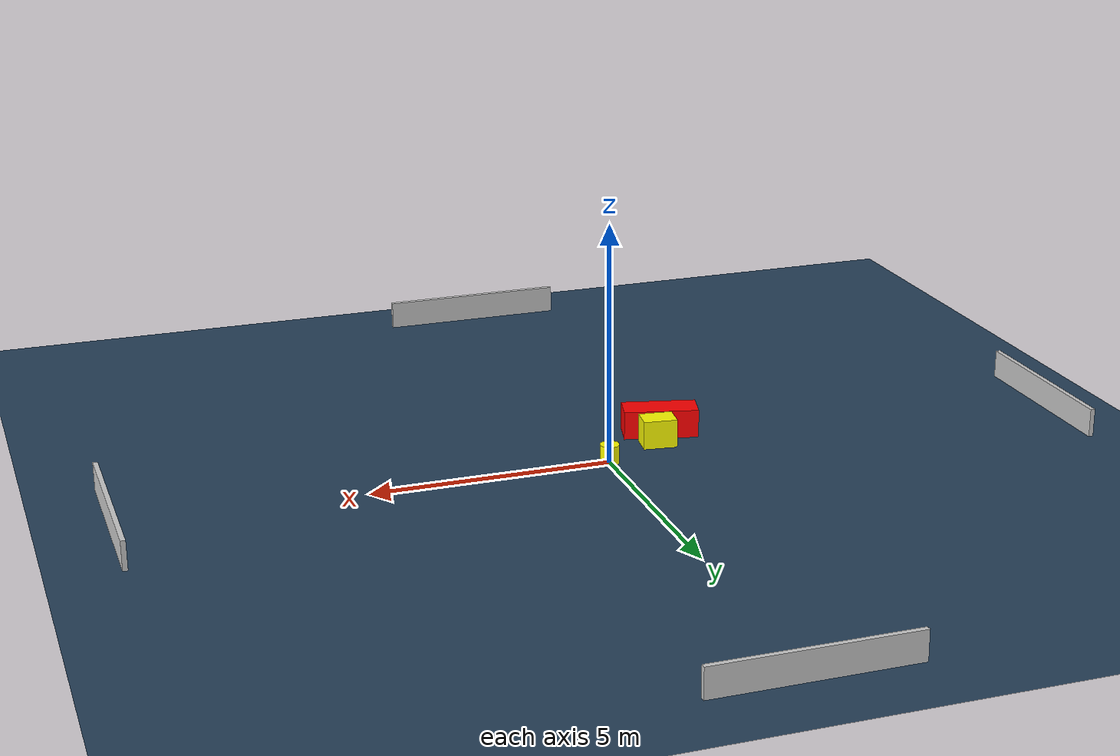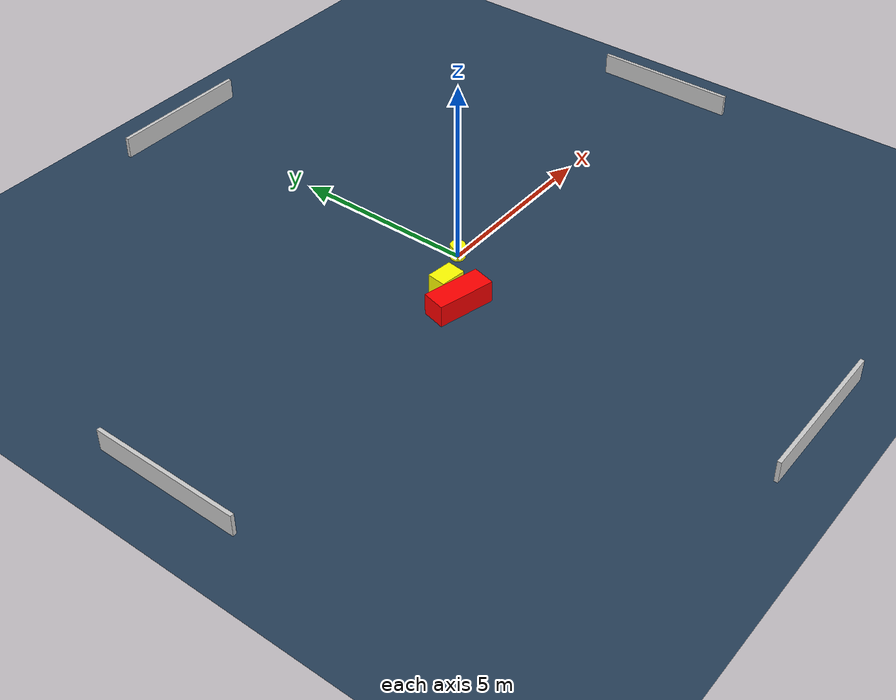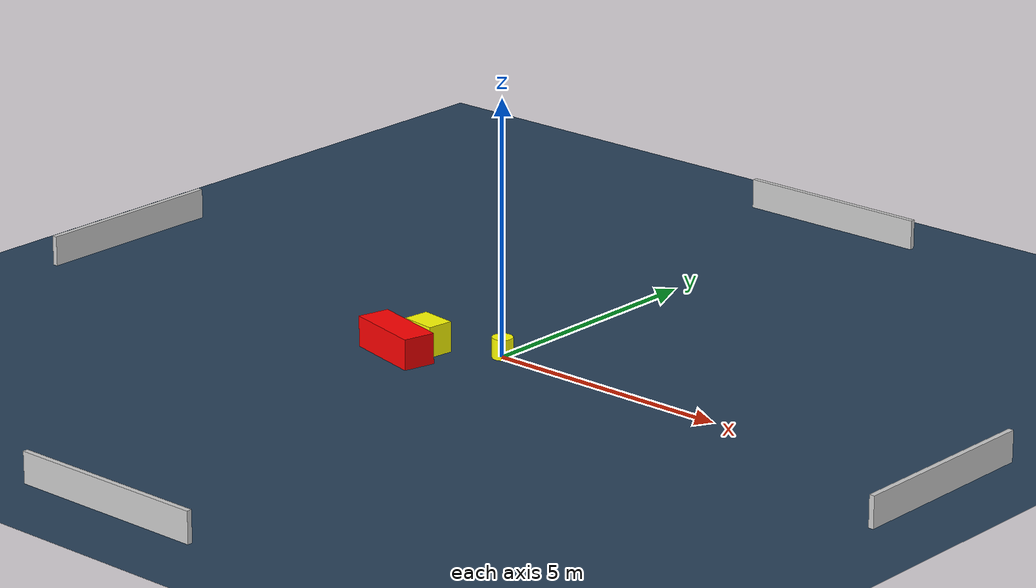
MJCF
<?xml version="1.0" ?>
<mujoco model="generated_environment">
  <option timestep="0.01" integrator="RK4" cone="elliptic"/>
  <default>
    <geom density="1"/>
  </default>
  <asset>
    <texture builtin="gradient" height="3072" name="skybox" rgb1="0.3 0.5 0.7" rgb2="0 0 0" type="skybox" width="512"/>
    <texture builtin="checker" height="300" name="groundplane" rgb1="0.2 0.3 0.4" rgb2="0.1 0.2 0.3" type="2d" width="300"/>
    <material name="groundplane" reflectance="0.2" texrepeat="5 5" texture="groundplane"/>
  </asset>
  <worldbody>
    <light dir="0 0 -1" directional="true" pos="0 0 1.5"/>
    <geom condim="3" friction="0.5 0.005 0.001" material="groundplane" name="floor" pos="0 0 0" size="0 0 0.05" type="plane"/>
    <body name="walls">
      <geom name="wall_1" condim="4" pos="-10.0 0.0 0.3" rgba="0.800000011920929 0.800000011920929 0.800000011920929 1.0" size="0.05 2.0 0.3" type="box"/>
      <geom name="wall_2" condim="4" pos="10.0 0.0 0.3" rgba="0.800000011920929 0.800000011920929 0.800000011920929 1.0" size="0.05 2.0 0.3" type="box"/>
      <geom name="wall_3" condim="4" pos="0.0 -10.0 0.3" rgba="0.800000011920929 0.800000011920929 0.800000011920929 1.0" size="2.0 0.05 0.3" type="box"/>
      <geom name="wall_4" condim="4" pos="0.0 10.0 0.3" rgba="0.800000011920929 0.800000011920929 0.800000011920929 1.0" size="2.0 0.05 0.3" type="box"/>
    </body>
    <body name="robot">
      <joint name="joint_x" type="slide" pos="0 0 0" axis="1 0 0"/>
      <joint name="joint_y" type="slide" pos="0 0 0" axis="0 1 0"/>
      <geom name="robot" type="cylinder" pos="0.0 0.0 0.2" size="0.2 0.2 0.0" mass="5.0" friction="1.0 0.005 0.0001" condim="4" rgba="1.0 1.0 0.0 1.0"/>
    </body>
    <body name="obstacle_1_movable">
      <geom name="obstacle_1_movable" condim="4" pos="-1.2840942411630571 -0.6341430172371098 0.3" euler="0 0 352.7569476533892" friction="0.0 0.005 0.001" rgba="1.0 1.0 0.0 1.0" size="0.35251306766352464 0.2551507615933103 0.3" type="box" mass="0.1"/>
      <joint type="free"/>
    </body>
    <body name="obstacle_2_static">
      <geom name="obstacle_2_static" condim="4" pos="-1.548425803733069 -1.2191742585299519 0.3" euler="0 0 255.97071440062783" friction="0.0 0.005 0.001" rgba="1.0 0.0 0.0 1.0" size="0.31789835542246936 0.7819802488152812 0.3" type="box"/>
    </body>
  </worldbody>
  <actuator>
    <motor name="actuator_x" joint="joint_x" gear="1" ctrlrange="-1 1"/>
    <motor name="actuator_y" joint="joint_y" gear="1" ctrlrange="-1 1"/>
  </actuator>
</mujoco>
